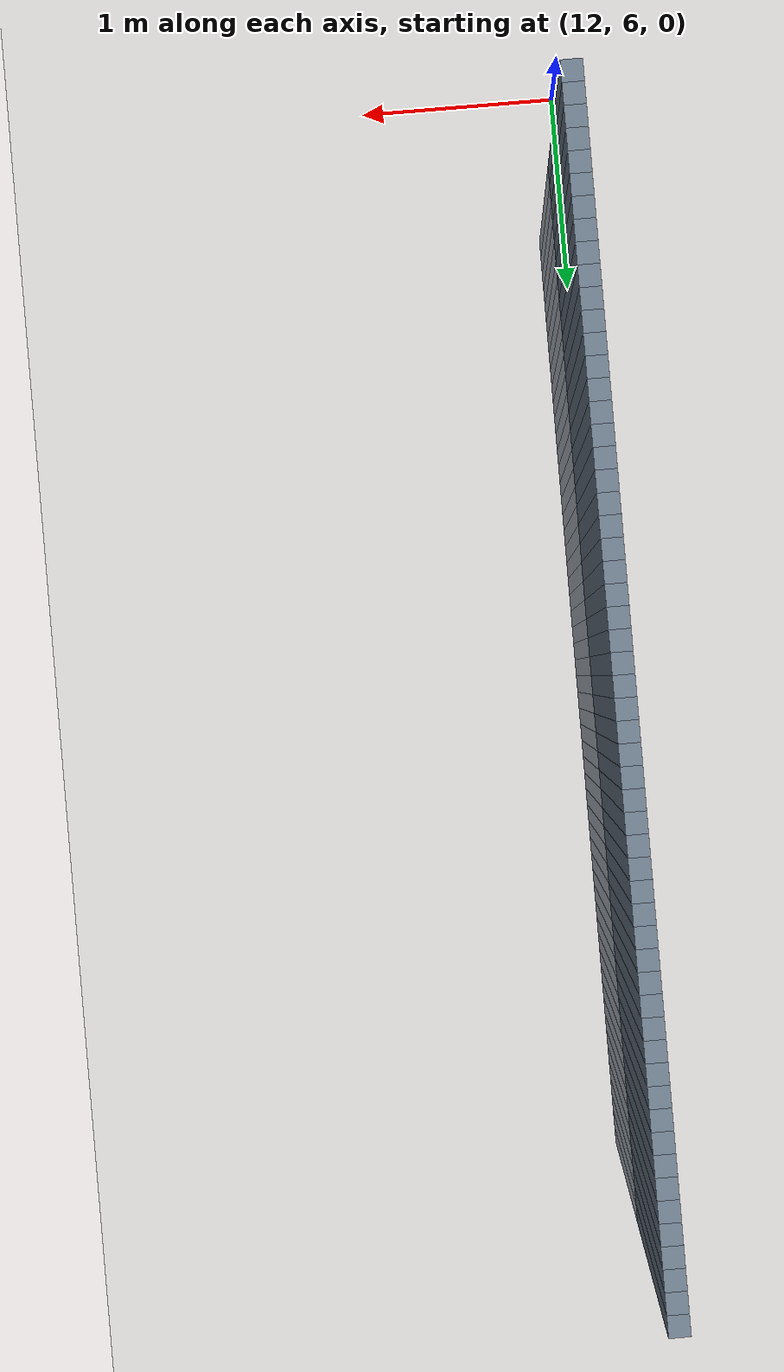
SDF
<sdf version="1.6">
 <world name="default">
  <model name="ground_plane">
   <static>1</static>
   <link name="link">
    <collision name="collision">
     <geometry><plane><normal>0 0 1</normal><size>100 100</size></plane></geometry>
     <surface><friction><ode><mu>100</mu><mu2>50</mu2></ode></friction></surface>
    </collision>
    <visual name="visual">
     <cast_shadows>0</cast_shadows>
     <geometry><plane><normal>0 0 1</normal><size>100 100</size></plane></geometry>
     <material>
      <script><uri>file://media/materials/scripts/gazebo.material</uri><name>Gazebo/Grey</name></script>
     </material>
    </visual>
   </link>
  </model>
  <model name="unit_cylinder_662">
   <static>1</static>
   <pose>12 6.4 0 0 -0 0</pose>
   <link name="link">
    <inertial>
     <mass>1</mass>
     <inertia><ixx>0.145833</ixx><ixy>0</ixy><ixz>0</ixz><iyy>0.145833</iyy><iyz>0</iyz><izz>0.125</izz></inertia>
    </inertial>
    <collision name="collision"><geometry><box><size>0.1 0.1 5</size></box></geometry></collision>
    <visual name="visual">
     <geometry><box><size>0.1 0.1 5</size></box></geometry>
     <material><ambient>0.466667 0.533333 0.6 1</ambient><diffuse>0.466667 0.533333 0.6 1</diffuse></material>
     <material>
      <script><name>Gazebo/Grey</name><uri>file://media/materials/scripts/gazebo.material</uri></script>
     </material>
    </visual>
   </link>
  </model>
  <model name="unit_cylinder_663">
   <static>1</static>
   <pose>12 6.5 0 0 -0 0</pose>
   <link name="link">
    <inertial>
     <mass>1</mass>
     <inertia><ixx>0.145833</ixx><ixy>0</ixy><ixz>0</ixz><iyy>0.145833</iyy><iyz>0</iyz><izz>0.125</izz></inertia>
    </inertial>
    <collision name="collision"><geometry><box><size>0.1 0.1 5</size></box></geometry></collision>
    <visual name="visual">
     <geometry><box><size>0.1 0.1 5</size></box></geometry>
     <material><ambient>0.466667 0.533333 0.6 1</ambient><diffuse>0.466667 0.533333 0.6 1</diffuse></material>
     <material>
      <script><name>Gazebo/Grey</name><uri>file://media/materials/scripts/gazebo.material</uri></script>
     </material>
    </visual>
   </link>
  </model>
  <model name="unit_cylinder_664">
   <static>1</static>
   <pose>12 6.6 0 0 -0 0</pose>
   <link name="link">
    <inertial>
     <mass>1</mass>
     <inertia><ixx>0.145833</ixx><ixy>0</ixy><ixz>0</ixz><iyy>0.145833</iyy><iyz>0</iyz><izz>0.125</izz></inertia>
    </inertial>
    <collision name="collision"><geometry><box><size>0.1 0.1 5</size></box></geometry></collision>
    <visual name="visual">
     <geometry><box><size>0.1 0.1 5</size></box></geometry>
     <material><ambient>0.466667 0.533333 0.6 1</ambient><diffuse>0.466667 0.533333 0.6 1</diffuse></material>
     <material>
      <script><name>Gazebo/Grey</name><uri>file://media/materials/scripts/gazebo.material</uri></script>
     </material>
    </visual>
   </link>
  </model>
  <model name="unit_cylinder_665">
   <static>1</static>
   <pose>12 6.7 0 0 -0 0</pose>
   <link name="link">
    <inertial>
     <mass>1</mass>
     <inertia><ixx>0.145833</ixx><ixy>0</ixy><ixz>0</ixz><iyy>0.145833</iyy><iyz>0</iyz><izz>0.125</izz></inertia>
    </inertial>
    <collision name="collision"><geometry><box><size>0.1 0.1 5</size></box></geometry></collision>
    <visual name="visual">
     <geometry><box><size>0.1 0.1 5</size></box></geometry>
     <material><ambient>0.466667 0.533333 0.6 1</ambient><diffuse>0.466667 0.533333 0.6 1</diffuse></material>
     <material>
      <script><name>Gazebo/Grey</name><uri>file://media/materials/scripts/gazebo.material</uri></script>
     </material>
    </visual>
   </link>
  </model>
  <model name="unit_cylinder_666">
   <static>1</static>
   <pose>12 6.8 0 0 -0 0</pose>
   <link name="link">
    <inertial>
     <mass>1</mass>
     <inertia><ixx>0.145833</ixx><ixy>0</ixy><ixz>0</ixz><iyy>0.145833</iyy><iyz>0</iyz><izz>0.125</izz></inertia>
    </inertial>
    <collision name="collision"><geometry><box><size>0.1 0.1 5</size></box></geometry></collision>
    <visual name="visual">
     <geometry><box><size>0.1 0.1 5</size></box></geometry>
     <material><ambient>0.466667 0.533333 0.6 1</ambient><diffuse>0.466667 0.533333 0.6 1</diffuse></material>
     <material>
      <script><name>Gazebo/Grey</name><uri>file://media/materials/scripts/gazebo.material</uri></script>
     </material>
    </visual>
   </link>
  </model>
  <model name="unit_cylinder_667">
   <static>1</static>
   <pose>12 6.9 0 0 -0 0</pose>
   <link name="link">
    <inertial>
     <mass>1</mass>
     <inertia><ixx>0.145833</ixx><ixy>0</ixy><ixz>0</ixz><iyy>0.145833</iyy><iyz>0</iyz><izz>0.125</izz></inertia>
    </inertial>
    <collision name="collision"><geometry><box><size>0.1 0.1 5</size></box></geometry></collision>
    <visual name="visual">
     <geometry><box><size>0.1 0.1 5</size></box></geometry>
     <material><ambient>0.466667 0.533333 0.6 1</ambient><diffuse>0.466667 0.533333 0.6 1</diffuse></material>
     <material>
      <script><name>Gazebo/Grey</name><uri>file://media/materials/scripts/gazebo.material</uri></script>
     </material>
    </visual>
   </link>
  </model>
  <model name="unit_cylinder_668">
   <static>1</static>
   <pose>12 7 0 0 -0 0</pose>
   <link name="link">
    <inertial>
     <mass>1</mass>
     <inertia><ixx>0.145833</ixx><ixy>0</ixy><ixz>0</ixz><iyy>0.145833</iyy><iyz>0</iyz><izz>0.125</izz></inertia>
    </inertial>
    <collision name="collision"><geometry><box><size>0.1 0.1 5</size></box></geometry></collision>
    <visual name="visual">
     <geometry><box><size>0.1 0.1 5</size></box></geometry>
     <material><ambient>0.466667 0.533333 0.6 1</ambient><diffuse>0.466667 0.533333 0.6 1</diffuse></material>
     <material>
      <script><name>Gazebo/Grey</name><uri>file://media/materials/scripts/gazebo.material</uri></script>
     </material>
    </visual>
   </link>
  </model>
  <model name="unit_cylinder_669">
   <static>1</static>
   <pose>12 7.1 0 0 -0 0</pose>
   <link name="link">
    <inertial>
     <mass>1</mass>
     <inertia><ixx>0.145833</ixx><ixy>0</ixy><ixz>0</ixz><iyy>0.145833</iyy><iyz>0</iyz><izz>0.125</izz></inertia>
    </inertial>
    <collision name="collision"><geometry><box><size>0.1 0.1 5</size></box></geometry></collision>
    <visual name="visual">
     <geometry><box><size>0.1 0.1 5</size></box></geometry>
     <material><ambient>0.466667 0.533333 0.6 1</ambient><diffuse>0.466667 0.533333 0.6 1</diffuse></material>
     <material>
      <script><name>Gazebo/Grey</name><uri>file://media/materials/scripts/gazebo.material</uri></script>
     </material>
    </visual>
   </link>
  </model>
  <model name="unit_cylinder_670">
   <static>1</static>
   <pose>12 7.2 0 0 -0 0</pose>
   <link name="link">
    <inertial>
     <mass>1</mass>
     <inertia><ixx>0.145833</ixx><ixy>0</ixy><ixz>0</ixz><iyy>0.145833</iyy><iyz>0</iyz><izz>0.125</izz></inertia>
    </inertial>
    <collision name="collision"><geometry><box><size>0.1 0.1 5</size></box></geometry></collision>
    <visual name="visual">
     <geometry><box><size>0.1 0.1 5</size></box></geometry>
     <material><ambient>0.466667 0.533333 0.6 1</ambient><diffuse>0.466667 0.533333 0.6 1</diffuse></material>
     <material>
      <script><name>Gazebo/Grey</name><uri>file://media/materials/scripts/gazebo.material</uri></script>
     </material>
    </visual>
   </link>
  </model>
  <model name="unit_cylinder_671">
   <static>1</static>
   <pose>12 7.3 0 0 -0 0</pose>
   <link name="link">
    <inertial>
     <mass>1</mass>
     <inertia><ixx>0.145833</ixx><ixy>0</ixy><ixz>0</ixz><iyy>0.145833</iyy><iyz>0</iyz><izz>0.125</izz></inertia>
    </inertial>
    <collision name="collision"><geometry><box><size>0.1 0.1 5</size></box></geometry></collision>
    <visual name="visual">
     <geometry><box><size>0.1 0.1 5</size></box></geometry>
     <material><ambient>0.466667 0.533333 0.6 1</ambient><diffuse>0.466667 0.533333 0.6 1</diffuse></material>
     <material>
      <script><name>Gazebo/Grey</name><uri>file://media/materials/scripts/gazebo.material</uri></script>
     </material>
    </visual>
   </link>
  </model>
  <model name="unit_cylinder_672">
   <static>1</static>
   <pose>12 7.4 0 0 -0 0</pose>
   <link name="link">
    <inertial>
     <mass>1</mass>
     <inertia><ixx>0.145833</ixx><ixy>0</ixy><ixz>0</ixz><iyy>0.145833</iyy><iyz>0</iyz><izz>0.125</izz></inertia>
    </inertial>
    <collision name="collision"><geometry><box><size>0.1 0.1 5</size></box></geometry></collision>
    <visual name="visual">
     <geometry><box><size>0.1 0.1 5</size></box></geometry>
     <material><ambient>0.466667 0.533333 0.6 1</ambient><diffuse>0.466667 0.533333 0.6 1</diffuse></material>
     <material>
      <script><name>Gazebo/Grey</name><uri>file://media/materials/scripts/gazebo.material</uri></script>
     </material>
    </visual>
   </link>
  </model>
  <model name="unit_cylinder_673">
   <static>1</static>
   <pose>12 7.5 0 0 -0 0</pose>
   <link name="link">
    <inertial>
     <mass>1</mass>
     <inertia><ixx>0.145833</ixx><ixy>0</ixy><ixz>0</ixz><iyy>0.145833</iyy><iyz>0</iyz><izz>0.125</izz></inertia>
    </inertial>
    <collision name="collision"><geometry><box><size>0.1 0.1 5</size></box></geometry></collision>
    <visual name="visual">
     <geometry><box><size>0.1 0.1 5</size></box></geometry>
     <material><ambient>0.466667 0.533333 0.6 1</ambient><diffuse>0.466667 0.533333 0.6 1</diffuse></material>
     <material>
      <script><name>Gazebo/Grey</name><uri>file://media/materials/scripts/gazebo.material</uri></script>
     </material>
    </visual>
   </link>
  </model>
  <model name="unit_cylinder_674">
   <static>1</static>
   <pose>12 7.6 0 0 -0 0</pose>
   <link name="link">
    <inertial>
     <mass>1</mass>
     <inertia><ixx>0.145833</ixx><ixy>0</ixy><ixz>0</ixz><iyy>0.145833</iyy><iyz>0</iyz><izz>0.125</izz></inertia>
    </inertial>
    <collision name="collision"><geometry><box><size>0.1 0.1 5</size></box></geometry></collision>
    <visual name="visual">
     <geometry><box><size>0.1 0.1 5</size></box></geometry>
     <material><ambient>0.466667 0.533333 0.6 1</ambient><diffuse>0.466667 0.533333 0.6 1</diffuse></material>
     <material>
      <script><name>Gazebo/Grey</name><uri>file://media/materials/scripts/gazebo.material</uri></script>
     </material>
    </visual>
   </link>
  </model>
  <model name="unit_cylinder_675">
   <static>1</static>
   <pose>12 7.7 0 0 -0 0</pose>
   <link name="link">
    <inertial>
     <mass>1</mass>
     <inertia><ixx>0.145833</ixx><ixy>0</ixy><ixz>0</ixz><iyy>0.145833</iyy><iyz>0</iyz><izz>0.125</izz></inertia>
    </inertial>
    <collision name="collision"><geometry><box><size>0.1 0.1 5</size></box></geometry></collision>
    <visual name="visual">
     <geometry><box><size>0.1 0.1 5</size></box></geometry>
     <material><ambient>0.466667 0.533333 0.6 1</ambient><diffuse>0.466667 0.533333 0.6 1</diffuse></material>
     <material>
      <script><name>Gazebo/Grey</name><uri>file://media/materials/scripts/gazebo.material</uri></script>
     </material>
    </visual>
   </link>
  </model>
  <model name="unit_cylinder_676">
   <static>1</static>
   <pose>12 7.8 0 0 -0 0</pose>
   <link name="link">
    <inertial>
     <mass>1</mass>
     <inertia><ixx>0.145833</ixx><ixy>0</ixy><ixz>0</ixz><iyy>0.145833</iyy><iyz>0</iyz><izz>0.125</izz></inertia>
    </inertial>
    <collision name="collision"><geometry><box><size>0.1 0.1 5</size></box></geometry></collision>
    <visual name="visual">
     <geometry><box><size>0.1 0.1 5</size></box></geometry>
     <material><ambient>0.466667 0.533333 0.6 1</ambient><diffuse>0.466667 0.533333 0.6 1</diffuse></material>
     <material>
      <script><name>Gazebo/Grey</name><uri>file://media/materials/scripts/gazebo.material</uri></script>
     </material>
    </visual>
   </link>
  </model>
  <model name="unit_cylinder_677">
   <static>1</static>
   <pose>12 7.9 0 0 -0 0</pose>
   <link name="link">
    <inertial>
     <mass>1</mass>
     <inertia><ixx>0.145833</ixx><ixy>0</ixy><ixz>0</ixz><iyy>0.145833</iyy><iyz>0</iyz><izz>0.125</izz></inertia>
    </inertial>
    <collision name="collision"><geometry><box><size>0.1 0.1 5</size></box></geometry></collision>
    <visual name="visual">
     <geometry><box><size>0.1 0.1 5</size></box></geometry>
     <material><ambient>0.466667 0.533333 0.6 1</ambient><diffuse>0.466667 0.533333 0.6 1</diffuse></material>
     <material>
      <script><name>Gazebo/Grey</name><uri>file://media/materials/scripts/gazebo.material</uri></script>
     </material>
    </visual>
   </link>
  </model>
  <model name="unit_cylinder_678">
   <static>1</static>
   <pose>12 8 0 0 -0 0</pose>
   <link name="link">
    <inertial>
     <mass>1</mass>
     <inertia><ixx>0.145833</ixx><ixy>0</ixy><ixz>0</ixz><iyy>0.145833</iyy><iyz>0</iyz><izz>0.125</izz></inertia>
    </inertial>
    <collision name="collision"><geometry><box><size>0.1 0.1 5</size></box></geometry></collision>
    <visual name="visual">
     <geometry><box><size>0.1 0.1 5</size></box></geometry>
     <material><ambient>0.466667 0.533333 0.6 1</ambient><diffuse>0.466667 0.533333 0.6 1</diffuse></material>
     <material>
      <script><name>Gazebo/Grey</name><uri>file://media/materials/scripts/gazebo.material</uri></script>
     </material>
    </visual>
   </link>
  </model>
  <model name="unit_cylinder_679">
   <static>1</static>
   <pose>12 8.1 0 0 -0 0</pose>
   <link name="link">
    <inertial>
     <mass>1</mass>
     <inertia><ixx>0.145833</ixx><ixy>0</ixy><ixz>0</ixz><iyy>0.145833</iyy><iyz>0</iyz><izz>0.125</izz></inertia>
    </inertial>
    <collision name="collision"><geometry><box><size>0.1 0.1 5</size></box></geometry></collision>
    <visual name="visual">
     <geometry><box><size>0.1 0.1 5</size></box></geometry>
     <material><ambient>0.466667 0.533333 0.6 1</ambient><diffuse>0.466667 0.533333 0.6 1</diffuse></material>
     <material>
      <script><name>Gazebo/Grey</name><uri>file://media/materials/scripts/gazebo.material</uri></script>
     </material>
    </visual>
   </link>
  </model>
  <model name="unit_cylinder_680">
   <static>1</static>
   <pose>12 8.2 0 0 -0 0</pose>
   <link name="link">
    <inertial>
     <mass>1</mass>
     <inertia><ixx>0.145833</ixx><ixy>0</ixy><ixz>0</ixz><iyy>0.145833</iyy><iyz>0</iyz><izz>0.125</izz></inertia>
    </inertial>
    <collision name="collision"><geometry><box><size>0.1 0.1 5</size></box></geometry></collision>
    <visual name="visual">
     <geometry><box><size>0.1 0.1 5</size></box></geometry>
     <material><ambient>0.466667 0.533333 0.6 1</ambient><diffuse>0.466667 0.533333 0.6 1</diffuse></material>
     <material>
      <script><name>Gazebo/Grey</name><uri>file://media/materials/scripts/gazebo.material</uri></script>
     </material>
    </visual>
   </link>
  </model>
  <model name="unit_cylinder_681">
   <static>1</static>
   <pose>12 8.3 0 0 -0 0</pose>
   <link name="link">
    <inertial>
     <mass>1</mass>
     <inertia><ixx>0.145833</ixx><ixy>0</ixy><ixz>0</ixz><iyy>0.145833</iyy><iyz>0</iyz><izz>0.125</izz></inertia>
    </inertial>
    <collision name="collision"><geometry><box><size>0.1 0.1 5</size></box></geometry></collision>
    <visual name="visual">
     <geometry><box><size>0.1 0.1 5</size></box></geometry>
     <material><ambient>0.466667 0.533333 0.6 1</ambient><diffuse>0.466667 0.533333 0.6 1</diffuse></material>
     <material>
      <script><name>Gazebo/Grey</name><uri>file://media/materials/scripts/gazebo.material</uri></script>
     </material>
    </visual>
   </link>
  </model>
  <model name="unit_cylinder_682">
   <static>1</static>
   <pose>12 8.4 0 0 -0 0</pose>
   <link name="link">
    <inertial>
     <mass>1</mass>
     <inertia><ixx>0.145833</ixx><ixy>0</ixy><ixz>0</ixz><iyy>0.145833</iyy><iyz>0</iyz><izz>0.125</izz></inertia>
    </inertial>
    <collision name="collision"><geometry><box><size>0.1 0.1 5</size></box></geometry></collision>
    <visual name="visual">
     <geometry><box><size>0.1 0.1 5</size></box></geometry>
     <material><ambient>0.466667 0.533333 0.6 1</ambient><diffuse>0.466667 0.533333 0.6 1</diffuse></material>
     <material>
      <script><name>Gazebo/Grey</name><uri>file://media/materials/scripts/gazebo.material</uri></script>
     </material>
    </visual>
   </link>
  </model>
  <model name="unit_cylinder_683">
   <static>1</static>
   <pose>12 8.5 0 0 -0 0</pose>
   <link name="link">
    <inertial>
     <mass>1</mass>
     <inertia><ixx>0.145833</ixx><ixy>0</ixy><ixz>0</ixz><iyy>0.145833</iyy><iyz>0</iyz><izz>0.125</izz></inertia>
    </inertial>
    <collision name="collision"><geometry><box><size>0.1 0.1 5</size></box></geometry></collision>
    <visual name="visual">
     <geometry><box><size>0.1 0.1 5</size></box></geometry>
     <material><ambient>0.466667 0.533333 0.6 1</ambient><diffuse>0.466667 0.533333 0.6 1</diffuse></material>
     <material>
      <script><name>Gazebo/Grey</name><uri>file://media/materials/scripts/gazebo.material</uri></script>
     </material>
    </visual>
   </link>
  </model>
  <model name="unit_cylinder_684">
   <static>1</static>
   <pose>12 8.6 0 0 -0 0</pose>
   <link name="link">
    <inertial>
     <mass>1</mass>
     <inertia><ixx>0.145833</ixx><ixy>0</ixy><ixz>0</ixz><iyy>0.145833</iyy><iyz>0</iyz><izz>0.125</izz></inertia>
    </inertial>
    <collision name="collision"><geometry><box><size>0.1 0.1 5</size></box></geometry></collision>
    <visual name="visual">
     <geometry><box><size>0.1 0.1 5</size></box></geometry>
     <material><ambient>0.466667 0.533333 0.6 1</ambient><diffuse>0.466667 0.533333 0.6 1</diffuse></material>
     <material>
      <script><name>Gazebo/Grey</name><uri>file://media/materials/scripts/gazebo.material</uri></script>
     </material>
    </visual>
   </link>
  </model>
  <model name="unit_cylinder_685">
   <static>1</static>
   <pose>12 8.7 0 0 -0 0</pose>
   <link name="link">
    <inertial>
     <mass>1</mass>
     <inertia><ixx>0.145833</ixx><ixy>0</ixy><ixz>0</ixz><iyy>0.145833</iyy><iyz>0</iyz><izz>0.125</izz></inertia>
    </inertial>
    <collision name="collision"><geometry><box><size>0.1 0.1 5</size></box></geometry></collision>
    <visual name="visual">
     <geometry><box><size>0.1 0.1 5</size></box></geometry>
     <material><ambient>0.466667 0.533333 0.6 1</ambient><diffuse>0.466667 0.533333 0.6 1</diffuse></material>
     <material>
      <script><name>Gazebo/Grey</name><uri>file://media/materials/scripts/gazebo.material</uri></script>
     </material>
    </visual>
   </link>
  </model>
  <model name="unit_cylinder_686">
   <static>1</static>
   <pose>12 8.8 0 0 -0 0</pose>
   <link name="link">
    <inertial>
     <mass>1</mass>
     <inertia><ixx>0.145833</ixx><ixy>0</ixy><ixz>0</ixz><iyy>0.145833</iyy><iyz>0</iyz><izz>0.125</izz></inertia>
    </inertial>
    <collision name="collision"><geometry><box><size>0.1 0.1 5</size></box></geometry></collision>
    <visual name="visual">
     <geometry><box><size>0.1 0.1 5</size></box></geometry>
     <material><ambient>0.466667 0.533333 0.6 1</ambient><diffuse>0.466667 0.533333 0.6 1</diffuse></material>
     <material>
      <script><name>Gazebo/Grey</name><uri>file://media/materials/scripts/gazebo.material</uri></script>
     </material>
    </visual>
   </link>
  </model>
  <model name="unit_cylinder_687">
   <static>1</static>
   <pose>12 8.9 0 0 -0 0</pose>
   <link name="link">
    <inertial>
     <mass>1</mass>
     <inertia><ixx>0.145833</ixx><ixy>0</ixy><ixz>0</ixz><iyy>0.145833</iyy><iyz>0</iyz><izz>0.125</izz></inertia>
    </inertial>
    <collision name="collision"><geometry><box><size>0.1 0.1 5</size></box></geometry></collision>
    <visual name="visual">
     <geometry><box><size>0.1 0.1 5</size></box></geometry>
     <material><ambient>0.466667 0.533333 0.6 1</ambient><diffuse>0.466667 0.533333 0.6 1</diffuse></material>
     <material>
      <script><name>Gazebo/Grey</name><uri>file://media/materials/scripts/gazebo.material</uri></script>
     </material>
    </visual>
   </link>
  </model>
  <model name="unit_cylinder_688">
   <static>1</static>
   <pose>12 9 0 0 -0 0</pose>
   <link name="link">
    <inertial>
     <mass>1</mass>
     <inertia><ixx>0.145833</ixx><ixy>0</ixy><ixz>0</ixz><iyy>0.145833</iyy><iyz>0</iyz><izz>0.125</izz></inertia>
    </inertial>
    <collision name="collision"><geometry><box><size>0.1 0.1 5</size></box></geometry></collision>
    <visual name="visual">
     <geometry><box><size>0.1 0.1 5</size></box></geometry>
     <material><ambient>0.466667 0.533333 0.6 1</ambient><diffuse>0.466667 0.533333 0.6 1</diffuse></material>
     <material>
      <script><name>Gazebo/Grey</name><uri>file://media/materials/scripts/gazebo.material</uri></script>
     </material>
    </visual>
   </link>
  </model>
  <model name="unit_cylinder_689">
   <static>1</static>
   <pose>12 9.1 0 0 -0 0</pose>
   <link name="link">
    <inertial>
     <mass>1</mass>
     <inertia><ixx>0.145833</ixx><ixy>0</ixy><ixz>0</ixz><iyy>0.145833</iyy><iyz>0</iyz><izz>0.125</izz></inertia>
    </inertial>
    <collision name="collision"><geometry><box><size>0.1 0.1 5</size></box></geometry></collision>
    <visual name="visual">
     <geometry><box><size>0.1 0.1 5</size></box></geometry>
     <material><ambient>0.466667 0.533333 0.6 1</ambient><diffuse>0.466667 0.533333 0.6 1</diffuse></material>
     <material>
      <script><name>Gazebo/Grey</name><uri>file://media/materials/scripts/gazebo.material</uri></script>
     </material>
    </visual>
   </link>
  </model>
  <model name="unit_cylinder_690">
   <static>1</static>
   <pose>12 9.2 0 0 -0 0</pose>
   <link name="link">
    <inertial>
     <mass>1</mass>
     <inertia><ixx>0.145833</ixx><ixy>0</ixy><ixz>0</ixz><iyy>0.145833</iyy><iyz>0</iyz><izz>0.125</izz></inertia>
    </inertial>
    <collision name="collision"><geometry><box><size>0.1 0.1 5</size></box></geometry></collision>
    <visual name="visual">
     <geometry><box><size>0.1 0.1 5</size></box></geometry>
     <material><ambient>0.466667 0.533333 0.6 1</ambient><diffuse>0.466667 0.533333 0.6 1</diffuse></material>
     <material>
      <script><name>Gazebo/Grey</name><uri>file://media/materials/scripts/gazebo.material</uri></script>
     </material>
    </visual>
   </link>
  </model>
  <model name="unit_cylinder_691">
   <static>1</static>
   <pose>12 9.3 0 0 -0 0</pose>
   <link name="link">
    <inertial>
     <mass>1</mass>
     <inertia><ixx>0.145833</ixx><ixy>0</ixy><ixz>0</ixz><iyy>0.145833</iyy><iyz>0</iyz><izz>0.125</izz></inertia>
    </inertial>
    <collision name="collision"><geometry><box><size>0.1 0.1 5</size></box></geometry></collision>
    <visual name="visual">
     <geometry><box><size>0.1 0.1 5</size></box></geometry>
     <material><ambient>0.466667 0.533333 0.6 1</ambient><diffuse>0.466667 0.533333 0.6 1</diffuse></material>
     <material>
      <script><name>Gazebo/Grey</name><uri>file://media/materials/scripts/gazebo.material</uri></script>
     </material>
    </visual>
   </link>
  </model>
  <model name="unit_cylinder_692">
   <static>1</static>
   <pose>12 9.4 0 0 -0 0</pose>
   <link name="link">
    <inertial>
     <mass>1</mass>
     <inertia><ixx>0.145833</ixx><ixy>0</ixy><ixz>0</ixz><iyy>0.145833</iyy><iyz>0</iyz><izz>0.125</izz></inertia>
    </inertial>
    <collision name="collision"><geometry><box><size>0.1 0.1 5</size></box></geometry></collision>
    <visual name="visual">
     <geometry><box><size>0.1 0.1 5</size></box></geometry>
     <material><ambient>0.466667 0.533333 0.6 1</ambient><diffuse>0.466667 0.533333 0.6 1</diffuse></material>
     <material>
      <script><name>Gazebo/Grey</name><uri>file://media/materials/scripts/gazebo.material</uri></script>
     </material>
    </visual>
   </link>
  </model>
  <model name="unit_cylinder_693">
   <static>1</static>
   <pose>12 9.5 0 0 -0 0</pose>
   <link name="link">
    <inertial>
     <mass>1</mass>
     <inertia><ixx>0.145833</ixx><ixy>0</ixy><ixz>0</ixz><iyy>0.145833</iyy><iyz>0</iyz><izz>0.125</izz></inertia>
    </inertial>
    <collision name="collision"><geometry><box><size>0.1 0.1 5</size></box></geometry></collision>
    <visual name="visual">
     <geometry><box><size>0.1 0.1 5</size></box></geometry>
     <material><ambient>0.466667 0.533333 0.6 1</ambient><diffuse>0.466667 0.533333 0.6 1</diffuse></material>
     <material>
      <script><name>Gazebo/Grey</name><uri>file://media/materials/scripts/gazebo.material</uri></script>
     </material>
    </visual>
   </link>
  </model>
  <model name="unit_cylinder_694">
   <static>1</static>
   <pose>12 9.6 0 0 -0 0</pose>
   <link name="link">
    <inertial>
     <mass>1</mass>
     <inertia><ixx>0.145833</ixx><ixy>0</ixy><ixz>0</ixz><iyy>0.145833</iyy><iyz>0</iyz><izz>0.125</izz></inertia>
    </inertial>
    <collision name="collision"><geometry><box><size>0.1 0.1 5</size></box></geometry></collision>
    <visual name="visual">
     <geometry><box><size>0.1 0.1 5</size></box></geometry>
     <material><ambient>0.466667 0.533333 0.6 1</ambient><diffuse>0.466667 0.533333 0.6 1</diffuse></material>
     <material>
      <script><name>Gazebo/Grey</name><uri>file://media/materials/scripts/gazebo.material</uri></script>
     </material>
    </visual>
   </link>
  </model>
  <model name="unit_cylinder_695">
   <static>1</static>
   <pose>12 9.7 0 0 -0 0</pose>
   <link name="link">
    <inertial>
     <mass>1</mass>
     <inertia><ixx>0.145833</ixx><ixy>0</ixy><ixz>0</ixz><iyy>0.145833</iyy><iyz>0</iyz><izz>0.125</izz></inertia>
    </inertial>
    <collision name="collision"><geometry><box><size>0.1 0.1 5</size></box></geometry></collision>
    <visual name="visual">
     <geometry><box><size>0.1 0.1 5</size></box></geometry>
     <material><ambient>0.466667 0.533333 0.6 1</ambient><diffuse>0.466667 0.533333 0.6 1</diffuse></material>
     <material>
      <script><name>Gazebo/Grey</name><uri>file://media/materials/scripts/gazebo.material</uri></script>
     </material>
    </visual>
   </link>
  </model>
  <model name="unit_cylinder_696">
   <static>1</static>
   <pose>12 9.8 0 0 -0 0</pose>
   <link name="link">
    <inertial>
     <mass>1</mass>
     <inertia><ixx>0.145833</ixx><ixy>0</ixy><ixz>0</ixz><iyy>0.145833</iyy><iyz>0</iyz><izz>0.125</izz></inertia>
    </inertial>
    <collision name="collision"><geometry><box><size>0.1 0.1 5</size></box></geometry></collision>
    <visual name="visual">
     <geometry><box><size>0.1 0.1 5</size></box></geometry>
     <material><ambient>0.466667 0.533333 0.6 1</ambient><diffuse>0.466667 0.533333 0.6 1</diffuse></material>
     <material>
      <script><name>Gazebo/Grey</name><uri>file://media/materials/scripts/gazebo.material</uri></script>
     </material>
    </visual>
   </link>
  </model>
  <model name="unit_cylinder_697">
   <static>1</static>
   <pose>12 9.9 0 0 -0 0</pose>
   <link name="link">
    <inertial>
     <mass>1</mass>
     <inertia><ixx>0.145833</ixx><ixy>0</ixy><ixz>0</ixz><iyy>0.145833</iyy><iyz>0</iyz><izz>0.125</izz></inertia>
    </inertial>
    <collision name="collision"><geometry><box><size>0.1 0.1 5</size></box></geometry></collision>
    <visual name="visual">
     <geometry><box><size>0.1 0.1 5</size></box></geometry>
     <material><ambient>0.466667 0.533333 0.6 1</ambient><diffuse>0.466667 0.533333 0.6 1</diffuse></material>
     <material>
      <script><name>Gazebo/Grey</name><uri>file://media/materials/scripts/gazebo.material</uri></script>
     </material>
    </visual>
   </link>
  </model>
  <model name="unit_cylinder_698">
   <static>1</static>
   <pose>12 10 0 0 -0 0</pose>
   <link name="link">
    <inertial>
     <mass>1</mass>
     <inertia><ixx>0.145833</ixx><ixy>0</ixy><ixz>0</ixz><iyy>0.145833</iyy><iyz>0</iyz><izz>0.125</izz></inertia>
    </inertial>
    <collision name="collision"><geometry><box><size>0.1 0.1 5</size></box></geometry></collision>
    <visual name="visual">
     <geometry><box><size>0.1 0.1 5</size></box></geometry>
     <material><ambient>0.466667 0.533333 0.6 1</ambient><diffuse>0.466667 0.533333 0.6 1</diffuse></material>
     <material>
      <script><name>Gazebo/Grey</name><uri>file://media/materials/scripts/gazebo.material</uri></script>
     </material>
    </visual>
   </link>
  </model>
  <model name="unit_cylinder_699">
   <static>1</static>
   <pose>12 10.1 0 0 -0 0</pose>
   <link name="link">
    <inertial>
     <mass>1</mass>
     <inertia><ixx>0.145833</ixx><ixy>0</ixy><ixz>0</ixz><iyy>0.145833</iyy><iyz>0</iyz><izz>0.125</izz></inertia>
    </inertial>
    <collision name="collision"><geometry><box><size>0.1 0.1 5</size></box></geometry></collision>
    <visual name="visual">
     <geometry><box><size>0.1 0.1 5</size></box></geometry>
     <material><ambient>0.466667 0.533333 0.6 1</ambient><diffuse>0.466667 0.533333 0.6 1</diffuse></material>
     <material>
      <script><name>Gazebo/Grey</name><uri>file://media/materials/scripts/gazebo.material</uri></script>
     </material>
    </visual>
   </link>
  </model>
  <model name="unit_cylinder_700">
   <static>1</static>
   <pose>12 10.2 0 0 -0 0</pose>
   <link name="link">
    <inertial>
     <mass>1</mass>
     <inertia><ixx>0.145833</ixx><ixy>0</ixy><ixz>0</ixz><iyy>0.145833</iyy><iyz>0</iyz><izz>0.125</izz></inertia>
    </inertial>
    <collision name="collision"><geometry><box><size>0.1 0.1 5</size></box></geometry></collision>
    <visual name="visual">
     <geometry><box><size>0.1 0.1 5</size></box></geometry>
     <material><ambient>0.466667 0.533333 0.6 1</ambient><diffuse>0.466667 0.533333 0.6 1</diffuse></material>
     <material>
      <script><name>Gazebo/Grey</name><uri>file://media/materials/scripts/gazebo.material</uri></script>
     </material>
    </visual>
   </link>
  </model>
  <model name="unit_cylinder_701">
   <static>1</static>
   <pose>12 10.3 0 0 -0 0</pose>
   <link name="link">
    <inertial>
     <mass>1</mass>
     <inertia><ixx>0.145833</ixx><ixy>0</ixy><ixz>0</ixz><iyy>0.145833</iyy><iyz>0</iyz><izz>0.125</izz></inertia>
    </inertial>
    <collision name="collision"><geometry><box><size>0.1 0.1 5</size></box></geometry></collision>
    <visual name="visual">
     <geometry><box><size>0.1 0.1 5</size></box></geometry>
     <material><ambient>0.466667 0.533333 0.6 1</ambient><diffuse>0.466667 0.533333 0.6 1</diffuse></material>
     <material>
      <script><name>Gazebo/Grey</name><uri>file://media/materials/scripts/gazebo.material</uri></script>
     </material>
    </visual>
   </link>
  </model>
  <model name="unit_cylinder_702">
   <static>1</static>
   <pose>12 10.4 0 0 -0 0</pose>
   <link name="link">
    <inertial>
     <mass>1</mass>
     <inertia><ixx>0.145833</ixx><ixy>0</ixy><ixz>0</ixz><iyy>0.145833</iyy><iyz>0</iyz><izz>0.125</izz></inertia>
    </inertial>
    <collision name="collision"><geometry><box><size>0.1 0.1 5</size></box></geometry></collision>
    <visual name="visual">
     <geometry><box><size>0.1 0.1 5</size></box></geometry>
     <material><ambient>0.466667 0.533333 0.6 1</ambient><diffuse>0.466667 0.533333 0.6 1</diffuse></material>
     <material>
      <script><name>Gazebo/Grey</name><uri>file://media/materials/scripts/gazebo.material</uri></script>
     </material>
    </visual>
   </link>
  </model>
  <model name="unit_cylinder_703">
   <static>1</static>
   <pose>12 10.5 0 0 -0 0</pose>
   <link name="link">
    <inertial>
     <mass>1</mass>
     <inertia><ixx>0.145833</ixx><ixy>0</ixy><ixz>0</ixz><iyy>0.145833</iyy><iyz>0</iyz><izz>0.125</izz></inertia>
    </inertial>
    <collision name="collision"><geometry><box><size>0.1 0.1 5</size></box></geometry></collision>
    <visual name="visual">
     <geometry><box><size>0.1 0.1 5</size></box></geometry>
     <material><ambient>0.466667 0.533333 0.6 1</ambient><diffuse>0.466667 0.533333 0.6 1</diffuse></material>
     <material>
      <script><name>Gazebo/Grey</name><uri>file://media/materials/scripts/gazebo.material</uri></script>
     </material>
    </visual>
   </link>
  </model>
  <model name="unit_cylinder_704">
   <static>1</static>
   <pose>12 10.6 0 0 -0 0</pose>
   <link name="link">
    <inertial>
     <mass>1</mass>
     <inertia><ixx>0.145833</ixx><ixy>0</ixy><ixz>0</ixz><iyy>0.145833</iyy><iyz>0</iyz><izz>0.125</izz></inertia>
    </inertial>
    <collision name="collision"><geometry><box><size>0.1 0.1 5</size></box></geometry></collision>
    <visual name="visual">
     <geometry><box><size>0.1 0.1 5</size></box></geometry>
     <material><ambient>0.466667 0.533333 0.6 1</ambient><diffuse>0.466667 0.533333 0.6 1</diffuse></material>
     <material>
      <script><name>Gazebo/Grey</name><uri>file://media/materials/scripts/gazebo.material</uri></script>
     </material>
    </visual>
   </link>
  </model>
  <model name="unit_cylinder_705">
   <static>1</static>
   <pose>12 10.7 0 0 -0 0</pose>
   <link name="link">
    <inertial>
     <mass>1</mass>
     <inertia><ixx>0.145833</ixx><ixy>0</ixy><ixz>0</ixz><iyy>0.145833</iyy><iyz>0</iyz><izz>0.125</izz></inertia>
    </inertial>
    <collision name="collision"><geometry><box><size>0.1 0.1 5</size></box></geometry></collision>
    <visual name="visual">
     <geometry><box><size>0.1 0.1 5</size></box></geometry>
     <material><ambient>0.466667 0.533333 0.6 1</ambient><diffuse>0.466667 0.533333 0.6 1</diffuse></material>
     <material>
      <script><name>Gazebo/Grey</name><uri>file://media/materials/scripts/gazebo.material</uri></script>
     </material>
    </visual>
   </link>
  </model>
  <model name="unit_cylinder_706">
   <static>1</static>
   <pose>12 10.8 0 0 -0 0</pose>
   <link name="link">
    <inertial>
     <mass>1</mass>
     <inertia><ixx>0.145833</ixx><ixy>0</ixy><ixz>0</ixz><iyy>0.145833</iyy><iyz>0</iyz><izz>0.125</izz></inertia>
    </inertial>
    <collision name="collision"><geometry><box><size>0.1 0.1 5</size></box></geometry></collision>
    <visual name="visual">
     <geometry><box><size>0.1 0.1 5</size></box></geometry>
     <material><ambient>0.466667 0.533333 0.6 1</ambient><diffuse>0.466667 0.533333 0.6 1</diffuse></material>
     <material>
      <script><name>Gazebo/Grey</name><uri>file://media/materials/scripts/gazebo.material</uri></script>
     </material>
    </visual>
   </link>
  </model>
  <model name="unit_cylinder_707">
   <static>1</static>
   <pose>12 10.9 0 0 -0 0</pose>
   <link name="link">
    <inertial>
     <mass>1</mass>
     <inertia><ixx>0.145833</ixx><ixy>0</ixy><ixz>0</ixz><iyy>0.145833</iyy><iyz>0</iyz><izz>0.125</izz></inertia>
    </inertial>
    <collision name="collision"><geometry><box><size>0.1 0.1 5</size></box></geometry></collision>
    <visual name="visual">
     <geometry><box><size>0.1 0.1 5</size></box></geometry>
     <material><ambient>0.466667 0.533333 0.6 1</ambient><diffuse>0.466667 0.533333 0.6 1</diffuse></material>
     <material>
      <script><name>Gazebo/Grey</name><uri>file://media/materials/scripts/gazebo.material</uri></script>
     </material>
    </visual>
   </link>
  </model>
  <model name="unit_cylinder_708">
   <static>1</static>
   <pose>12 11 0 0 -0 0</pose>
   <link name="link">
    <inertial>
     <mass>1</mass>
     <inertia><ixx>0.145833</ixx><ixy>0</ixy><ixz>0</ixz><iyy>0.145833</iyy><iyz>0</iyz><izz>0.125</izz></inertia>
    </inertial>
    <collision name="collision"><geometry><box><size>0.1 0.1 5</size></box></geometry></collision>
    <visual name="visual">
     <geometry><box><size>0.1 0.1 5</size></box></geometry>
     <material><ambient>0.466667 0.533333 0.6 1</ambient><diffuse>0.466667 0.533333 0.6 1</diffuse></material>
     <material>
      <script><name>Gazebo/Grey</name><uri>file://media/materials/scripts/gazebo.material</uri></script>
     </material>
    </visual>
   </link>
  </model>
  <model name="unit_cylinder_709">
   <static>1</static>
   <pose>12 11.1 0 0 -0 0</pose>
   <link name="link">
    <inertial>
     <mass>1</mass>
     <inertia><ixx>0.145833</ixx><ixy>0</ixy><ixz>0</ixz><iyy>0.145833</iyy><iyz>0</iyz><izz>0.125</izz></inertia>
    </inertial>
    <collision name="collision"><geometry><box><size>0.1 0.1 5</size></box></geometry></collision>
    <visual name="visual">
     <geometry><box><size>0.1 0.1 5</size></box></geometry>
     <material><ambient>0.466667 0.533333 0.6 1</ambient><diffuse>0.466667 0.533333 0.6 1</diffuse></material>
     <material>
      <script><name>Gazebo/Grey</name><uri>file://media/materials/scripts/gazebo.material</uri></script>
     </material>
    </visual>
   </link>
  </model>
  <model name="unit_cylinder_710">
   <static>1</static>
   <pose>12 11.2 0 0 -0 0</pose>
   <link name="link">
    <inertial>
     <mass>1</mass>
     <inertia><ixx>0.145833</ixx><ixy>0</ixy><ixz>0</ixz><iyy>0.145833</iyy><iyz>0</iyz><izz>0.125</izz></inertia>
    </inertial>
    <collision name="collision"><geometry><box><size>0.1 0.1 5</size></box></geometry></collision>
    <visual name="visual">
     <geometry><box><size>0.1 0.1 5</size></box></geometry>
     <material><ambient>0.466667 0.533333 0.6 1</ambient><diffuse>0.466667 0.533333 0.6 1</diffuse></material>
     <material>
      <script><name>Gazebo/Grey</name><uri>file://media/materials/scripts/gazebo.material</uri></script>
     </material>
    </visual>
   </link>
  </model>
  <model name="unit_cylinder_711">
   <static>1</static>
   <pose>12 11.3 0 0 -0 0</pose>
   <link name="link">
    <inertial>
     <mass>1</mass>
     <inertia><ixx>0.145833</ixx><ixy>0</ixy><ixz>0</ixz><iyy>0.145833</iyy><iyz>0</iyz><izz>0.125</izz></inertia>
    </inertial>
    <collision name="collision"><geometry><box><size>0.1 0.1 5</size></box></geometry></collision>
    <visual name="visual">
     <geometry><box><size>0.1 0.1 5</size></box></geometry>
     <material><ambient>0.466667 0.533333 0.6 1</ambient><diffuse>0.466667 0.533333 0.6 1</diffuse></material>
     <material>
      <script><name>Gazebo/Grey</name><uri>file://media/materials/scripts/gazebo.material</uri></script>
     </material>
    </visual>
   </link>
  </model>
  <model name="unit_cylinder_712">
   <static>1</static>
   <pose>12 11.4 0 0 -0 0</pose>
   <link name="link">
    <inertial>
     <mass>1</mass>
     <inertia><ixx>0.145833</ixx><ixy>0</ixy><ixz>0</ixz><iyy>0.145833</iyy><iyz>0</iyz><izz>0.125</izz></inertia>
    </inertial>
    <collision name="collision"><geometry><box><size>0.1 0.1 5</size></box></geometry></collision>
    <visual name="visual">
     <geometry><box><size>0.1 0.1 5</size></box></geometry>
     <material><ambient>0.466667 0.533333 0.6 1</ambient><diffuse>0.466667 0.533333 0.6 1</diffuse></material>
     <material>
      <script><name>Gazebo/Grey</name><uri>file://media/materials/scripts/gazebo.material</uri></script>
     </material>
    </visual>
   </link>
  </model>
  <model name="unit_cylinder_713">
   <static>1</static>
   <pose>12 11.5 0 0 -0 0</pose>
   <link name="link">
    <inertial>
     <mass>1</mass>
     <inertia><ixx>0.145833</ixx><ixy>0</ixy><ixz>0</ixz><iyy>0.145833</iyy><iyz>0</iyz><izz>0.125</izz></inertia>
    </inertial>
    <collision name="collision"><geometry><box><size>0.1 0.1 5</size></box></geometry></collision>
    <visual name="visual">
     <geometry><box><size>0.1 0.1 5</size></box></geometry>
     <material><ambient>0.466667 0.533333 0.6 1</ambient><diffuse>0.466667 0.533333 0.6 1</diffuse></material>
     <material>
      <script><name>Gazebo/Grey</name><uri>file://media/materials/scripts/gazebo.material</uri></script>
     </material>
    </visual>
   </link>
  </model>
  <model name="unit_cylinder_714">
   <static>1</static>
   <pose>12 11.6 0 0 -0 0</pose>
   <link name="link">
    <inertial>
     <mass>1</mass>
     <inertia><ixx>0.145833</ixx><ixy>0</ixy><ixz>0</ixz><iyy>0.145833</iyy><iyz>0</iyz><izz>0.125</izz></inertia>
    </inertial>
    <collision name="collision"><geometry><box><size>0.1 0.1 5</size></box></geometry></collision>
    <visual name="visual">
     <geometry><box><size>0.1 0.1 5</size></box></geometry>
     <material><ambient>0.466667 0.533333 0.6 1</ambient><diffuse>0.466667 0.533333 0.6 1</diffuse></material>
     <material>
      <script><name>Gazebo/Grey</name><uri>file://media/materials/scripts/gazebo.material</uri></script>
     </material>
    </visual>
   </link>
  </model>
  <model name="unit_cylinder_715">
   <static>1</static>
   <pose>12 11.7 0 0 -0 0</pose>
   <link name="link">
    <inertial>
     <mass>1</mass>
     <inertia><ixx>0.145833</ixx><ixy>0</ixy><ixz>0</ixz><iyy>0.145833</iyy><iyz>0</iyz><izz>0.125</izz></inertia>
    </inertial>
    <collision name="collision"><geometry><box><size>0.1 0.1 5</size></box></geometry></collision>
    <visual name="visual">
     <geometry><box><size>0.1 0.1 5</size></box></geometry>
     <material><ambient>0.466667 0.533333 0.6 1</ambient><diffuse>0.466667 0.533333 0.6 1</diffuse></material>
     <material>
      <script><name>Gazebo/Grey</name><uri>file://media/materials/scripts/gazebo.material</uri></script>
     </material>
    </visual>
   </link>
  </model>
  <model name="unit_cylinder_716">
   <static>1</static>
   <pose>12 11.8 0 0 -0 0</pose>
   <link name="link">
    <inertial>
     <mass>1</mass>
     <inertia><ixx>0.145833</ixx><ixy>0</ixy><ixz>0</ixz><iyy>0.145833</iyy><iyz>0</iyz><izz>0.125</izz></inertia>
    </inertial>
    <collision name="collision"><geometry><box><size>0.1 0.1 5</size></box></geometry></collision>
    <visual name="visual">
     <geometry><box><size>0.1 0.1 5</size></box></geometry>
     <material><ambient>0.466667 0.533333 0.6 1</ambient><diffuse>0.466667 0.533333 0.6 1</diffuse></material>
     <material>
      <script><name>Gazebo/Grey</name><uri>file://media/materials/scripts/gazebo.material</uri></script>
     </material>
    </visual>
   </link>
  </model>
  <model name="unit_cylinder_717">
   <static>1</static>
   <pose>12 11.9 0 0 -0 0</pose>
   <link name="link">
    <inertial>
     <mass>1</mass>
     <inertia><ixx>0.145833</ixx><ixy>0</ixy><ixz>0</ixz><iyy>0.145833</iyy><iyz>0</iyz><izz>0.125</izz></inertia>
    </inertial>
    <collision name="collision"><geometry><box><size>0.1 0.1 5</size></box></geometry></collision>
    <visual name="visual">
     <geometry><box><size>0.1 0.1 5</size></box></geometry>
     <material><ambient>0.466667 0.533333 0.6 1</ambient><diffuse>0.466667 0.533333 0.6 1</diffuse></material>
     <material>
      <script><name>Gazebo/Grey</name><uri>file://media/materials/scripts/gazebo.material</uri></script>
     </material>
    </visual>
   </link>
  </model>
 </world>
</sdf>
